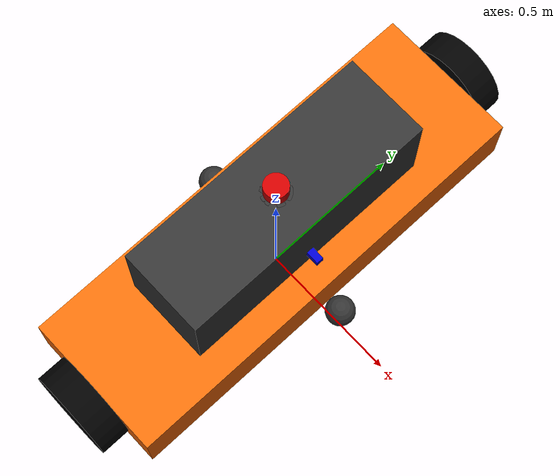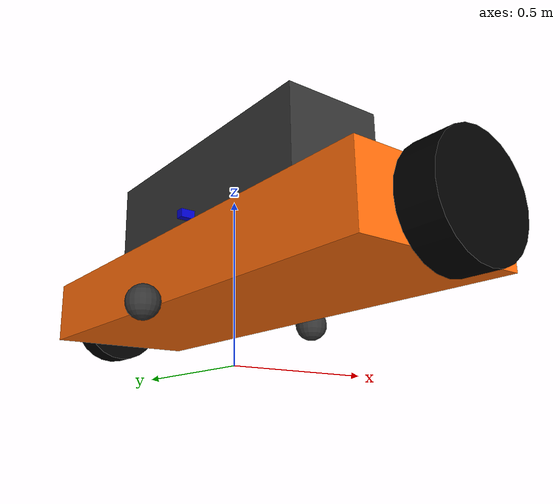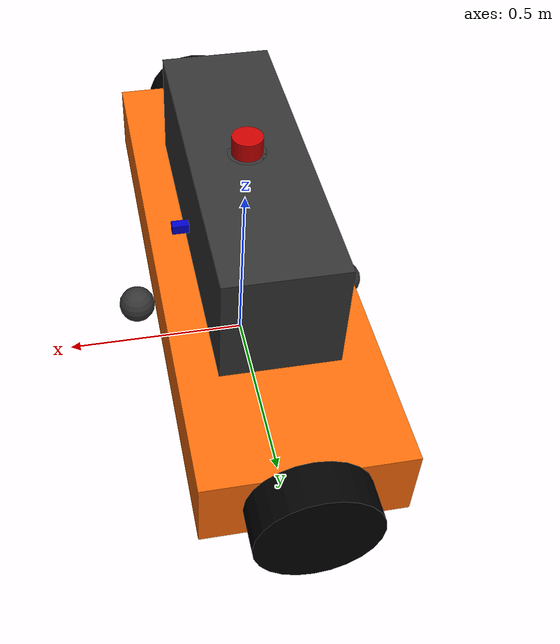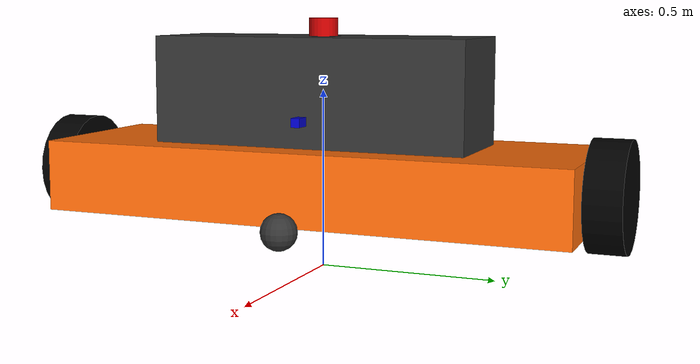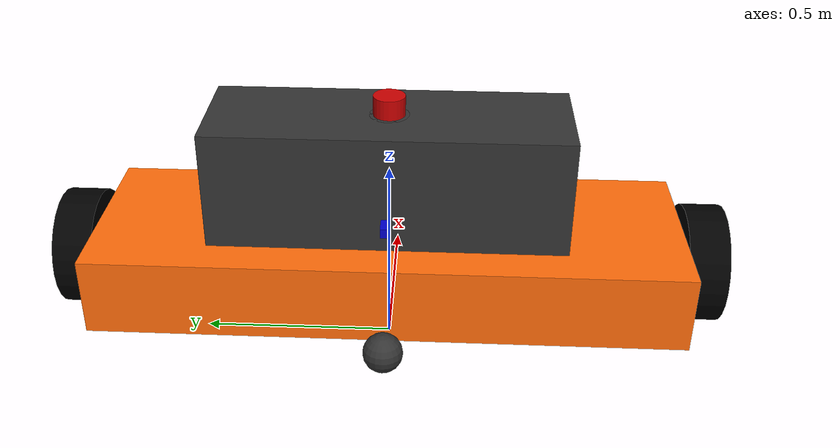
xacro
<?xml version="1.0"?>
<robot name="vineyard_mower" xmlns:xacro="http://www.ros.org/wiki/xacro">

  <!-- Properties -->
  <xacro:property name="PI" value="3.1415926535897931"/>

  <!-- Robot dimensions -->
  <xacro:property name="base_width" value="1.5"/>
  <xacro:property name="base_length" value="0.5"/>
  <xacro:property name="base_height" value="0.2"/>
  <xacro:property name="robot_height" value="0.5"/>

  <!-- Wheel properties -->
  <xacro:property name="wheel_radius" value="0.15"/>
  <xacro:property name="wheel_width" value="0.1"/>
  <xacro:property name="track_width" value="1.4"/>

  <!-- Sensor properties -->
  <xacro:property name="sensor_height" value="0.1"/>

  <!-- Materials -->
  <material name="black">
    <color rgba="0.0 0.0 0.0 1.0"/>
  </material>

  <material name="dark_grey">
    <color rgba="0.2 0.2 0.2 1.0"/>
  </material>

  <material name="orange">
    <color rgba="1.0 0.423529411765 0.0392156862745 1.0"/>
  </material>

  <material name="grey">
    <color rgba="0.2 0.2 0.2 1.0"/>
  </material>

  <material name="red">
    <color rgba="0.8 0.0 0.0 1.0"/>
  </material>

  <material name="blue">
    <color rgba="0.0 0.0 0.8 1.0"/>
  </material>

  <!-- Base Footprint (for ground reference) -->
  <link name="base_footprint"/>

  <joint name="base_footprint_joint" type="fixed">
    <parent link="base_footprint"/>
    <child link="base_link"/>
    <origin xyz="0 0 ${wheel_radius}" rpy="0 0 0"/>
  </joint>

  <!-- Front Caster Sphere -->
  <link name="front_caster">
    <visual>
      <origin xyz="0 0 0" rpy="0 0 0"/>
      <geometry>
        <sphere radius="0.05"/>
      </geometry>
      <material name="grey"/>
    </visual>

    <collision>
      <origin xyz="0 0 0" rpy="0 0 0"/>
      <geometry>
        <sphere radius="0.05"/>
      </geometry>
    </collision>

    <inertial>
      <mass value="0.5"/>
      <origin xyz="0 0 0"/>
      <inertia ixx="0.0005" ixy="0.0" ixz="0.0" iyy="0.0005" iyz="0.0" izz="0.0005"/>
    </inertial>
  </link>

  <joint name="front_caster_joint" type="fixed">
    <parent link="base_link"/>
    <child link="front_caster"/>
    <origin xyz="${base_length/2 + 0.05} 0 0" rpy="0 0 0"/>
  </joint>

  <!-- Rear Caster Sphere -->
  <link name="rear_caster">
    <visual>
      <origin xyz="0 0 0" rpy="0 0 0"/>
      <geometry>
        <sphere radius="0.05"/>
      </geometry>
      <material name="grey"/>
    </visual>

    <collision>
      <origin xyz="0 0 0" rpy="0 0 0"/>
      <geometry>
        <sphere radius="0.05"/>
      </geometry>
    </collision>

    <inertial>
      <mass value="0.5"/>
      <origin xyz="0 0 0"/>
      <inertia ixx="0.0005" ixy="0.0" ixz="0.0" iyy="0.0005" iyz="0.0" izz="0.0005"/>
    </inertial>
  </link>

  <joint name="rear_caster_joint" type="fixed">
    <parent link="base_link"/>
    <child link="rear_caster"/>
    <origin xyz="${-base_length/2 - 0.05} 0 0" rpy="0 0 0"/>
  </joint>

  <!-- Base Link -->
  <link name="base_link">
    <visual>
      <origin xyz="0 0 ${base_height/2}" rpy="0 0 0"/>
      <geometry>
        <box size="${base_length} ${base_width} ${base_height}"/>
      </geometry>
      <material name="orange"/>
    </visual>

    <collision>
      <origin xyz="0 0 ${base_height/2}" rpy="0 0 0"/>
      <geometry>
        <box size="${base_length} ${base_width} ${base_height}"/>
      </geometry>
    </collision>

    <inertial>
      <origin xyz="0 0 ${base_height/2}" rpy="0 0 0"/>
      <mass value="50.0"/>
      <inertia ixx="7.58333" ixy="0.0" ixz="0.0" iyy="7.58333" iyz="0.0" izz="9.375"/>
    </inertial>
  </link>

  <!-- Upper chassis for sensors -->
  <link name="upper_chassis">
    <visual>
      <origin xyz="0 0 ${(robot_height - base_height)/2}" rpy="0 0 0"/>
      <geometry>
        <box size="${base_length*0.6} ${base_width*0.6} ${robot_height - base_height}"/>
      </geometry>
      <material name="grey"/>
    </visual>

    <collision>
      <origin xyz="0 0 ${(robot_height - base_height)/2}" rpy="0 0 0"/>
      <geometry>
        <box size="${base_length*0.6} ${base_width*0.6} ${robot_height - base_height}"/>
      </geometry>
    </collision>

    <inertial>
      <origin xyz="0 0 ${(robot_height - base_height)/2}" rpy="0 0 0"/>
      <mass value="10.0"/>
      <inertia ixx="1.0" ixy="0.0" ixz="0.0" iyy="1.0" iyz="0.0" izz="1.0"/>
    </inertial>
  </link>

  <joint name="upper_chassis_joint" type="fixed">
    <parent link="base_link"/>
    <child link="upper_chassis"/>
    <origin xyz="0 0 ${base_height}" rpy="0 0 0"/>
  </joint>

  <!-- Left track wheel -->
  <link name="left_wheel">
    <visual>
      <origin xyz="0 0 0" rpy="${PI/2} 0 0"/>
      <geometry>
        <cylinder radius="${wheel_radius}" length="${wheel_width}"/>
      </geometry>
      <material name="black"/>
    </visual>

    <collision>
      <origin xyz="0 0 0" rpy="${PI/2} 0 0"/>
      <geometry>
        <cylinder radius="${wheel_radius}" length="${wheel_width}"/>
      </geometry>
    </collision>

    <inertial>
      <origin xyz="0 0 0" rpy="${PI/2} 0 0"/>
      <mass value="5.0"/>
      <inertia ixx="0.1125" ixy="0" ixz="0" iyy="0.1125" iyz="0" izz="0.1125"/>
    </inertial>
  </link>

  <joint name="left_wheel_joint" type="continuous">
    <parent link="base_link"/>
    <child link="left_wheel"/>
    <origin xyz="0 ${track_width/2+0.1} 0.1" rpy="0 0 0"/>
    <axis xyz="0 1 0"/>
  </joint>

  <!-- Right track wheel -->
  <link name="right_wheel">
    <visual>
      <origin xyz="0 0 0" rpy="${PI/2} 0 0"/>
      <geometry>
        <cylinder radius="${wheel_radius}" length="${wheel_width}"/>
      </geometry>
      <material name="black"/>
    </visual>

    <collision>
      <origin xyz="0 0 0" rpy="${PI/2} 0 0"/>
      <geometry>
        <cylinder radius="${wheel_radius}" length="${wheel_width}"/>
      </geometry>
    </collision>

    <inertial>
      <origin xyz="0 0 0" rpy="${PI/2} 0 0"/>
      <mass value="5.0"/>
      <inertia ixx="0.1125" ixy="0" ixz="0" iyy="0.1125" iyz="0" izz="0.1125"/>
    </inertial>
  </link>

  <joint name="right_wheel_joint" type="continuous">
    <parent link="base_link"/>
    <child link="right_wheel"/>
    <origin xyz="0 ${-track_width/2-0.1} 0.1" rpy="0 0 0"/>
    <axis xyz="0 1 0"/>
  </joint>

  <!-- Sensor mount (center of robot) -->
  <link name="sensor_mount">
    <visual>
      <origin xyz="0 0 ${sensor_height/2}" rpy="0 0 0"/>
      <geometry>
        <cylinder radius="0.05" length="${sensor_height}"/>
      </geometry>
      <material name="dark_grey"/>
    </visual>

    <collision>
      <origin xyz="0 0 ${sensor_height/2}" rpy="0 0 0"/>
      <geometry>
        <cylinder radius="0.05" length="${sensor_height}"/>
      </geometry>
    </collision>

    <inertial>
      <origin xyz="0 0 ${sensor_height/2}" rpy="0 0 0"/>
      <mass value="1.0"/>
      <inertia ixx="0.01" ixy="0" ixz="0" iyy="0.01" iyz="0" izz="0.01"/>
    </inertial>
  </link>

  <joint name="sensor_mount_joint" type="fixed">
    <parent link="upper_chassis"/>
    <child link="sensor_mount"/>
    <origin xyz="0 0 ${(robot_height - base_height)/2 + sensor_height/2}" rpy="0 0 0"/>
  </joint>

  <!-- LiDAR sensor -->
  <link name="lidar_link">
    <visual>
      <origin xyz="0 0 0" rpy="0 0 0"/>
      <geometry>
        <cylinder radius="0.04" length="0.05"/>
      </geometry>
      <material name="red"/>
    </visual>

    <collision>
      <origin xyz="0 0 0" rpy="0 0 0"/>
      <geometry>
        <cylinder radius="0.04" length="0.05"/>
      </geometry>
    </collision>

    <inertial>
      <origin xyz="0 0 0" rpy="0 0 0"/>
      <mass value="0.5"/>
      <inertia ixx="0.001" ixy="0" ixz="0" iyy="0.001" iyz="0" izz="0.001"/>
    </inertial>
  </link>

  <joint name="lidar_joint" type="fixed">
    <parent link="sensor_mount"/>
    <child link="lidar_link"/>
    <origin xyz="0 0 ${sensor_height + 0.025}" rpy="0 0 0"/>
  </joint>

  <!-- Create a frame for Cartographer compatibility -->
  <link name="lidar">
    <inertial>
      <origin xyz="0 0 0" rpy="0 0 0"/>
      <mass value="0.001"/>
      <inertia ixx="0.0001" ixy="0" ixz="0" iyy="0.0001" iyz="0" izz="0.0001"/>
    </inertial>
  </link>

  <joint name="lidar_alias_joint" type="fixed">
    <parent link="lidar_link"/>
    <child link="lidar"/>
    <origin xyz="0 0 0" rpy="0 0 0"/>
  </joint>

  <!-- Front camera (Intel RealSense) -->
  <link name="front_camera_link">
    <visual>
      <origin xyz="0 0 0" rpy="0 0 0"/>
      <geometry>
        <box size="0.09 0.025 0.025"/>
      </geometry>
      <material name="blue"/>
    </visual>

    <collision>
      <origin xyz="0 0 0" rpy="0 0 0"/>
      <geometry>
        <box size="0.09 0.025 0.025"/>
      </geometry>
    </collision>

    <inertial>
      <origin xyz="0 0 0" rpy="0 0 0"/>
      <mass value="0.15"/>
      <inertia ixx="0.0001" ixy="0" ixz="0" iyy="0.0001" iyz="0" izz="0.0001"/>
    </inertial>
  </link>

  <joint name="front_camera_joint" type="fixed">
    <parent link="upper_chassis"/>
    <child link="front_camera_link"/>
    <origin xyz="${base_length*0.3} 0 ${(robot_height - base_height)/4}" rpy="0 0 0"/>
  </joint>

  <!-- Rear camera (Intel RealSense) -->
  <link name="rear_camera_link">
    <visual>
      <origin xyz="0 0 0" rpy="0 0 0"/>
      <geometry>
        <box size="0.09 0.025 0.025"/>
      </geometry>
      <material name="blue"/>
    </visual>

    <collision>
      <origin xyz="0 0 0" rpy="0 0 0"/>
      <geometry>
        <box size="0.09 0.025 0.025"/>
      </geometry>
    </collision>

    <inertial>
      <origin xyz="0 0 0" rpy="0 0 0"/>
      <mass value="0.15"/>
      <inertia ixx="0.0001" ixy="0" ixz="0" iyy="0.0001" iyz="0" izz="0.0001"/>
    </inertial>
  </link>

  <joint name="rear_camera_joint" type="fixed">
    <parent link="upper_chassis"/>
    <child link="rear_camera_link"/>
    <origin xyz="${-base_length*0.3} 0 ${(robot_height - base_height)/4}" rpy="0 0 ${PI}"/>
  </joint>

  <!-- Gazebo plugins and properties -->
  <gazebo reference="base_link">
    <material>Gazebo/Orange</material>
  </gazebo>

  <gazebo reference="upper_chassis">
    <material>Gazebo/Grey</material>
  </gazebo>

  <gazebo reference="left_wheel">
    <material>Gazebo/Black</material>
    <mu1>1.0</mu1>
    <mu2>1.0</mu2>
    <kp>1000000.0</kp>
    <kd>100.0</kd>
    <minDepth>0.001</minDepth>
    <maxVel>1.0</maxVel>
    <fdir1>1 0 0</fdir1>
  </gazebo>

  <gazebo reference="right_wheel">
    <material>Gazebo/Black</material>
    <mu1>1.0</mu1>
    <mu2>1.0</mu2>
    <kp>1000000.0</kp>
    <kd>100.0</kd>
    <minDepth>0.001</minDepth>
    <maxVel>1.0</maxVel>
    <fdir1>1 0 0</fdir1>
  </gazebo>

  <gazebo reference="front_caster">
    <material>Gazebo/Grey</material>
    <mu1>0.0</mu1>
    <mu2>0.0</mu2>
    <kp>1000000.0</kp>
    <kd>100.0</kd>
    <minDepth>0.001</minDepth>
  </gazebo>

  <gazebo reference="rear_caster">
    <material>Gazebo/Grey</material>
    <mu1>0.0</mu1>
    <mu2>0.0</mu2>
    <kp>1000000.0</kp>
    <kd>100.0</kd>
    <minDepth>0.001</minDepth>
  </gazebo>

  <gazebo reference="lidar_link">
    <material>Gazebo/Red</material>
  </gazebo>

  <gazebo reference="front_camera_link">
    <material>Gazebo/Blue</material>
  </gazebo>

  <gazebo reference="rear_camera_link">
    <material>Gazebo/Blue</material>
  </gazebo>

  <!-- ros2_control -->
  <ros2_control name="GazeboSystem" type="system">
    <hardware>
      <plugin>gz_ros2_control/GazeboSimSystem</plugin>
    </hardware>

    <joint name="left_wheel_joint">
      <command_interface name="velocity">
        <param name="min">-10</param>
        <param name="max">10</param>
      </command_interface>
      <state_interface name="position"/>
      <state_interface name="velocity"/>
    </joint>

    <joint name="right_wheel_joint">
      <command_interface name="velocity">
        <param name="min">-10</param>
        <param name="max">10</param>
      </command_interface>
      <state_interface name="position"/>
      <state_interface name="velocity"/>
    </joint>
  </ros2_control>

  <!-- Gazebo ros2_control plugin -->
  <gazebo>
    <plugin filename="gz_ros2_control-system" name="gz_ros2_control::GazeboSimROS2ControlPlugin">
      <ros>
        <namespace></namespace>
        <remapping>/clock:=/clock</remapping>
      </ros>
    </plugin>
  </gazebo>

  <!-- LiDAR sensor plugin -->
  <gazebo reference="lidar_link">
    <sensor name="lidar" type="gpu_lidar">
      <pose>0 0 0 0 0 0</pose>
      <topic>/scan</topic>
      <gz_frame_id>lidar_link</gz_frame_id>
      <update_rate>10</update_rate>
      <ray>
        <scan>
          <horizontal>
            <samples>360</samples>
            <resolution>1</resolution>
            <min_angle>-3.141592</min_angle>
            <max_angle>3.141592</max_angle>
          </horizontal>
          <vertical>
            <samples>1</samples>
            <resolution>1</resolution>
            <min_angle>0</min_angle>
            <max_angle>0</max_angle>
          </vertical>
        </scan>
        <range>
          <min>0.1</min>
          <max>30.0</max>
          <resolution>0.01</resolution>
        </range>
        <noise>
          <type>gaussian</type>
          <mean>0.0</mean>
          <stddev>0.01</stddev>
        </noise>
      </ray>
      <always_on>1</always_on>
      <visualize>true</visualize>
    </sensor>
  </gazebo>

  <!-- Front camera sensor plugin (Intel RealSense simulation) -->
  <gazebo reference="front_camera_link">
    <!-- RGB Camera -->
    <sensor name="front_camera" type="camera">
      <pose>0 0 0 0 0 0</pose>
      <topic>front_camera/image</topic>
      <update_rate>30</update_rate>
      <camera>
        <horizontal_fov>1.047198</horizontal_fov>
        <image>
          <width>640</width>
          <height>480</height>
          <format>R8G8B8</format>
        </image>
        <clip>
          <near>0.1</near>
          <far>10.0</far>
        </clip>
        <noise>
          <type>gaussian</type>
          <mean>0.0</mean>
          <stddev>0.007</stddev>
        </noise>
      </camera>
      <always_on>1</always_on>
      <visualize>true</visualize>
    </sensor>

    <!-- Depth Camera -->
    <sensor name="front_depth_camera" type="depth_camera">
      <pose>0 0 0 0 0 0</pose>
      <topic>front_camera/depth_image</topic>
      <update_rate>30</update_rate>
      <camera>
        <horizontal_fov>1.047198</horizontal_fov>
        <image>
          <width>640</width>
          <height>480</height>
          <format>R_FLOAT32</format>
        </image>
        <clip>
          <near>0.1</near>
          <far>10.0</far>
        </clip>
        <noise>
          <type>gaussian</type>
          <mean>0.0</mean>
          <stddev>0.007</stddev>
        </noise>
      </camera>
      <always_on>1</always_on>
      <visualize>true</visualize>
    </sensor>
  </gazebo>

  <!-- Rear camera sensor plugin (Intel RealSense simulation) -->
  <gazebo reference="rear_camera_link">
    <!-- RGB Camera -->
    <sensor name="rear_camera" type="camera">
      <pose>0 0 0 0 0 0</pose>
      <topic>rear_camera/image</topic>
      <update_rate>30</update_rate>
      <camera>
        <horizontal_fov>1.047198</horizontal_fov>
        <image>
          <width>640</width>
          <height>480</height>
          <format>R8G8B8</format>
        </image>
        <clip>
          <near>0.1</near>
          <far>10.0</far>
        </clip>
        <noise>
          <type>gaussian</type>
          <mean>0.0</mean>
          <stddev>0.007</stddev>
        </noise>
      </camera>
      <always_on>1</always_on>
      <visualize>true</visualize>
    </sensor>

    <!-- Depth Camera -->
    <sensor name="rear_depth_camera" type="depth_camera">
      <pose>0 0 0 0 0 0</pose>
      <topic>rear_camera/depth_image</topic>
      <update_rate>30</update_rate>
      <camera>
        <horizontal_fov>1.047198</horizontal_fov>
        <image>
          <width>640</width>
          <height>480</height>
          <format>R_FLOAT32</format>
        </image>
        <clip>
          <near>0.1</near>
          <far>10.0</far>
        </clip>
        <noise>
          <type>gaussian</type>
          <mean>0.0</mean>
          <stddev>0.007</stddev>
        </noise>
      </camera>
      <always_on>1</always_on>
      <visualize>true</visualize>
    </sensor>
  </gazebo>

  <!-- IMU sensor for additional odometry -->
  <link name="imu_link">
    <inertial>
      <origin xyz="0 0 0" rpy="0 0 0"/>
      <mass value="0.1"/>
      <inertia ixx="0.001" ixy="0" ixz="0" iyy="0.001" iyz="0" izz="0.001"/>
    </inertial>
  </link>

  <joint name="imu_joint" type="fixed">
    <parent link="upper_chassis"/>
    <child link="imu_link"/>
    <origin xyz="0 0 0" rpy="0 0 0"/>
  </joint>

  <!-- IMU sensor plugin -->
  <gazebo reference="imu_link">
    <sensor name="imu_sensor" type="imu">
      <pose>0 0 0 0 0 0</pose>
      <topic>imu</topic>
      <update_rate>100</update_rate>
      <imu>
        <angular_velocity>
          <x>
            <noise type="gaussian">
              <mean>0.0</mean>
              <stddev>2e-4</stddev>
              <bias_mean>0.0000075</bias_mean>
              <bias_stddev>0.0000008</bias_stddev>
            </noise>
          </x>
          <y>
            <noise type="gaussian">
              <mean>0.0</mean>
              <stddev>2e-4</stddev>
              <bias_mean>0.0000075</bias_mean>
              <bias_stddev>0.0000008</bias_stddev>
            </noise>
          </y>
          <z>
            <noise type="gaussian">
              <mean>0.0</mean>
              <stddev>2e-4</stddev>
              <bias_mean>0.0000075</bias_mean>
              <bias_stddev>0.0000008</bias_stddev>
            </noise>
          </z>
        </angular_velocity>
        <linear_acceleration>
          <x>
            <noise type="gaussian">
              <mean>0.0</mean>
              <stddev>1.7e-2</stddev>
              <bias_mean>0.1</bias_mean>
              <bias_stddev>0.001</bias_stddev>
            </noise>
          </x>
          <y>
            <noise type="gaussian">
              <mean>0.0</mean>
              <stddev>1.7e-2</stddev>
              <bias_mean>0.1</bias_mean>
              <bias_stddev>0.001</bias_stddev>
            </noise>
          </y>
          <z>
            <noise type="gaussian">
              <mean>0.0</mean>
              <stddev>1.7e-2</stddev>
              <bias_mean>0.1</bias_mean>
              <bias_stddev>0.001</bias_stddev>
            </noise>
          </z>
        </linear_acceleration>
        <orientation_reference_frame>
          <localization>GRAV_UP</localization>
        </orientation_reference_frame>
      </imu>
      <always_on>1</always_on>
      <visualize>true</visualize>
    </sensor>
  </gazebo>

</robot>
